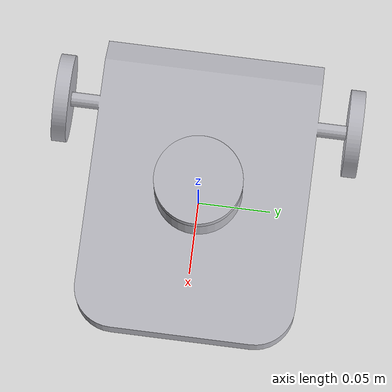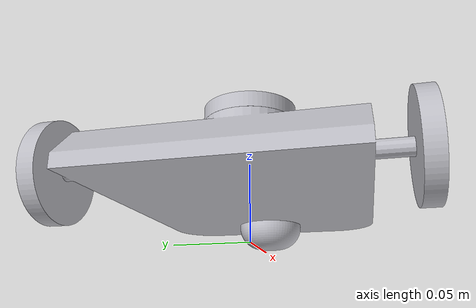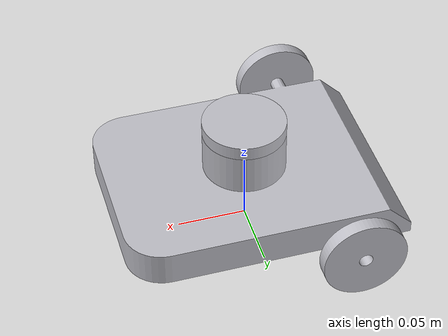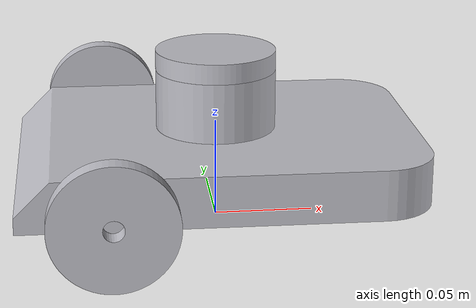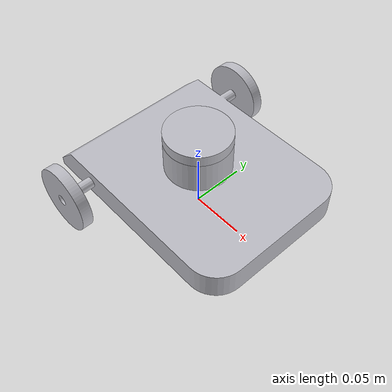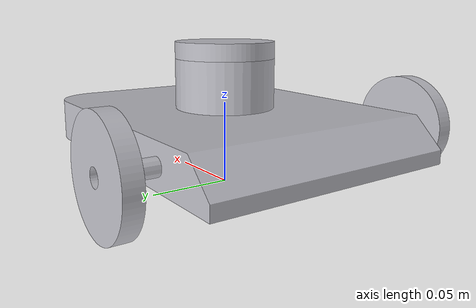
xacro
<?xml version="1.0" ?>
<robot name="rmp01_bot" xmlns:xacro="http://www.ros.org/wiki/xacro">

<xacro:include filename="$(find rmp01_bot_description)/urdf/materials.xacro" />
<xacro:include filename="$(find rmp01_bot_description)/urdf/rmp01_bot.trans" />
<xacro:include filename="$(find rmp01_bot_description)/urdf/rmp01_bot.gazebo" />
<link name="base_link">
  <inertial>
    <origin xyz="0.0014061657490346212 0.0 0.03770205101716623" rpy="0 0 0"/>
    <mass value="0.8569753987977322"/>
    <inertia ixx="0.00156" iyy="0.002508" izz="0.003853" ixy="0.0" iyz="0.0" ixz="-1.1e-05"/>
  </inertial>
  <visual>
    <origin xyz="0 0 0" rpy="0 0 0"/>
    <geometry>
      <mesh filename="package://rmp01_bot_description/meshes/base_link.stl" scale="0.001 0.001 0.001"/>
    </geometry>
    <material name="silver"/>
  </visual>
  <collision>
    <origin xyz="0 0 0" rpy="0 0 0"/>
    <geometry>
      <mesh filename="package://rmp01_bot_description/meshes/base_link.stl" scale="0.001 0.001 0.001"/>
    </geometry>
  </collision>
</link>
<!--camera link-->

<link name="camera_link"/>

<link name="right_wheel_1">
  <inertial>
    <origin xyz="-1.4932499681208355e-14 -0.0050000000000000044 0.0" rpy="0 0 0"/>
    <mass value="0.0255647102185869"/>
    <inertia ixx="6e-06" iyy="1.2e-05" izz="6e-06" ixy="0.0" iyz="-0.0" ixz="0.0"/>
  </inertial>
  <visual>
    <origin xyz="0.055 0.095 -0.035" rpy="0 0 0"/>
    <geometry>
      <mesh filename="package://rmp01_bot_description/meshes/right_wheel_1.stl" scale="0.001 0.001 0.001"/>
    </geometry>
    <material name="silver"/>
  </visual>
  <collision>
    <origin xyz="0.055 0.095 -0.035" rpy="0 0 0"/>
    <geometry>
      <mesh filename="package://rmp01_bot_description/meshes/right_wheel_1.stl" scale="0.001 0.001 0.001"/>
    </geometry>
  </collision>
</link>

<link name="left_wheel_1">
  <inertial>
    <origin xyz="-1.4932499681208355e-14 0.0050000000000000044 0.0" rpy="0 0 0"/>
    <mass value="0.0255647102185869"/>
    <inertia ixx="6e-06" iyy="1.2e-05" izz="6e-06" ixy="0.0" iyz="0.0" ixz="0.0"/>
  </inertial>
  <visual>
    <origin xyz="0.055 -0.095 -0.035" rpy="0 0 0"/>
    <geometry>
      <mesh filename="package://rmp01_bot_description/meshes/left_wheel_1.stl" scale="0.001 0.001 0.001"/>
    </geometry>
    <material name="silver"/>
  </visual>
  <collision>
    <origin xyz="0.055 -0.095 -0.035" rpy="0 0 0"/>
    <geometry>
      <mesh filename="package://rmp01_bot_description/meshes/left_wheel_1.stl" scale="0.001 0.001 0.001"/>
    </geometry>
  </collision>
</link>

<link name="caster_1">
  <inertial>
    <origin xyz="-0.03245000000000038 -8.011095240340356e-19 -0.007248183328440988" rpy="0 0 0"/>
    <mass value="0.18317584410379573"/>
    <inertia ixx="2.3e-05" iyy="2.3e-05" izz="3.9e-05" ixy="0.0" iyz="-0.0" ixz="-0.0"/>
  </inertial>
  <visual>
    <origin xyz="-0.1 -0.0 -0.0225" rpy="0 0 0"/>
    <geometry>
      <mesh filename="package://rmp01_bot_description/meshes/caster_1.stl" scale="0.001 0.001 0.001"/>
    </geometry>
    <material name="silver"/>
  </visual>
  <collision>
    <origin xyz="-0.1 -0.0 -0.0225" rpy="0 0 0"/>
    <geometry>
      <mesh filename="package://rmp01_bot_description/meshes/caster_1.stl" scale="0.001 0.001 0.001"/>
    </geometry>
  </collision>
</link>

<link name="lidar_1">
  <inertial>
    <origin xyz="0.0 0.0 0.0050000000000000044" rpy="0 0 0"/>
    <mass value="0.22195352097611892"/>
    <inertia ixx="5.2e-05" iyy="5.2e-05" izz="0.0001" ixy="0.0" iyz="-0.0" ixz="-0.0"/>
  </inertial>
  <visual>
    <origin xyz="-0.0 -0.0 -0.0775" rpy="0 0 0"/>
    <geometry>
      <mesh filename="package://rmp01_bot_description/meshes/lidar_1.stl" scale="0.001 0.001 0.001"/>
    </geometry>
    <material name="silver"/>
  </visual>
  <collision>
    <origin xyz="-0.0 -0.0 -0.0775" rpy="0 0 0"/>
    <geometry>
      <mesh filename="package://rmp01_bot_description/meshes/lidar_1.stl" scale="0.001 0.001 0.001"/>
    </geometry>
  </collision>
</link>
<joint name="camera_joint" type="fixed">
  <origin xyz="0.0 0.0 0.1" rpy="0 0 0"/>
  <parent link="base_link"/>
  <child link="camera_link"/>
  </joint>
<joint name="right_wheel_joint" type="continuous">
  <origin xyz="-0.055 -0.095 0.035" rpy="0 0 0"/>
  <parent link="base_link"/>
  <child link="right_wheel_1"/>
  <axis xyz="0.0 1.0 0.0"/>
</joint>

<joint name="left_wheel_joint" type="continuous">
  <origin xyz="-0.055 0.095 0.035" rpy="0 0 0"/>
  <parent link="base_link"/>
  <child link="left_wheel_1"/>
  <axis xyz="0.0 1.0 0.0"/>
</joint>

<joint name="caster_joint" type="fixed">
  <origin xyz="0.1 0.0 0.0225" rpy="0 0 0"/>
  <parent link="base_link"/>
  <child link="caster_1"/>
</joint>

<joint name="lidar_joint" type="fixed">
  <origin xyz="0.0 0.0 0.0775" rpy="0 0 0"/>
  <parent link="base_link"/>
  <child link="lidar_1"/>
</joint>

</robot>

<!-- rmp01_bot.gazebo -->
<robot name="rmp01_bot" xmlns:xacro="http://www.ros.org/wiki/xacro" >

<xacro:property name="wheel_color" value="Gazebo/Black" />
<xacro:property name="body_color" value="Gazebo/Red" />
<gazebo>
  <plugin name="control" filename="libgazebo_ros_control.so"/>
</gazebo>
<gazebo reference="base_link">
  <material>${body_color}</material>
  <mu1>0.2</mu1>
  <mu2>0.2</mu2>
  <selfCollide>true</selfCollide>
  <gravity>true</gravity>
</gazebo>

<gazebo reference="right_wheel_1">
  <material>${wheel_color}</material>
  <mu1>100</mu1>
  <mu2>100</mu2>
  <selfCollide>true</selfCollide>
</gazebo>

<gazebo reference="left_wheel_1">
  <material>${wheel_color}</material>
  <mu1>100</mu1>
  <mu2>100</mu2>
  <selfCollide>true</selfCollide>
</gazebo>

<gazebo reference="caster_1">
  <material>${body_color}</material>
  <mu1>0.2</mu1>
  <mu2>0.2</mu2>
  <selfCollide>true</selfCollide>
</gazebo>

<gazebo reference="lidar_1">
  <material>${body_color}</material>
  <mu1>0.2</mu1>
  <mu2>0.2</mu2>
  <selfCollide>true</selfCollide>
</gazebo>

<!-- diff drive -->

<gazebo>
  <plugin name="differential_drive_controller" filename="libgazebo_ros_diff_drive.so">

    <!-- Plugin update rate in Hz -->
    <updateRate>10</updateRate>

    <!-- Name of left joint, defaults to `left_joint` -->
    <leftJoint>left_wheel_joint</leftJoint>

    <!-- Name of right joint, defaults to `right_joint` -->
    <rightJoint>right_wheel_joint</rightJoint>

    <!-- The distance from the center of one wheel to the other, in meters, defaults to 0.34 m -->
    <wheelSeparation>0.20</wheelSeparation>

    <!-- Diameter of the wheels, in meters, defaults to 0.15 m -->
    <wheelDiameter>0.59</wheelDiameter>

    <!-- Wheel acceleration, in rad/s^2, defaults to 0.0 rad/s^2 -->
    <wheelAcceleration>1.0</wheelAcceleration>

    <!-- Maximum torque which the wheels can produce, in Nm, defaults to 5 Nm -->
    <wheelTorque>20</wheelTorque>

    <!-- Topic to receive geometry_msgs/Twist message commands, defaults to `cmd_vel` -->
    <commandTopic>cmd_vel</commandTopic>

    <!-- Topic to publish nav_msgs/Odometry messages, defaults to `odom` -->
    <odometryTopic>odom</odometryTopic>

    <!-- Odometry frame, defaults to `odom` -->
    <odometryFrame>odom</odometryFrame>

    <!-- Robot frame to calculate odometry from, defaults to `base_footprint` -->
    <robotBaseFrame>base_link</robotBaseFrame>

    <!-- Odometry source, 0 for ENCODER, 1 for WORLD, defaults to WORLD -->
    <odometrySource>1</odometrySource>

    <!-- Set to true to publish transforms for the wheel links, defaults to false -->
    <publishWheelTF>true</publishWheelTF>

    <!-- Set to true to publish transforms for the odometry, defaults to true -->
    <publishOdom>true</publishOdom>

    <!-- Set to true to publish sensor_msgs/JointState on /joint_states for the wheel joints, defaults to false -->
    <publishWheelJointState>true</publishWheelJointState>

    <!-- Set to true to swap right and left wheels, defaults to true -->
    <legacyMode>false</legacyMode>
  </plugin>
</gazebo>
<!--Lidar Plugin-->
<gazebo reference="lidar_1">
    <sensor type="ray" name="head_hokuyo_sensor">
      <pose>0 0 0 0 0 0</pose>
      <visualize>false</visualize>
      <update_rate>40</update_rate>
      <ray>
        <scan>
          <horizontal>
            <samples>720</samples>
            <resolution>1</resolution>
            <min_angle>-3.14</min_angle>
            <max_angle>3.14</max_angle>
          </horizontal>
        </scan>
        <range>
          <min>0.10</min>
          <max>30.0</max>
          <resolution>0.01</resolution>
        </range>
        <noise>
          <type>gaussian</type>
          <mean>0.0</mean>
          <stddev>0.01</stddev>
        </noise>
      </ray>
      <plugin name="gazebo_ros_head_hokuyo_controller" filename="libgazebo_ros_laser.so">
        <topicName>/scan</topicName>
        <frameName>lidar_1</frameName>
      </plugin>
    </sensor>
  </gazebo>
  <!-- camera -->
  <gazebo reference="camera_link">
    <sensor type="camera" name="camera1">
      <update_rate>30.0</update_rate>
      <camera name="head">
        <horizontal_fov>1.3962634</horizontal_fov>
        <image>-
          <width>800</width>
          <height>800</height>
          <format>R8G8B8</format>
        </image>
        <clip>
          <near>0.02</near>
          <far>300</far>
        </clip>
        <noise>
          <type>gaussian</type>
          <!-- Noise is sampled independently per pixel on each frame.
               That pixel's noise value is added to each of its color
               channels, which at that point lie in the range [0,1]. -->
          <mean>0.0</mean>
          <stddev>0.007</stddev>
        </noise>
      </camera>
      <plugin name="camera_controller" filename="libgazebo_ros_camera.so">
        <alwaysOn>true</alwaysOn>
        <updateRate>0.0</updateRate>
        <cameraName>rrbot/camera1</cameraName>
        <imageTopicName>image_raw</imageTopicName>
        <cameraInfoTopicName>camera_info</cameraInfoTopicName>
        <frameName>camera_link</frameName>
        <hackBaseline>0.07</hackBaseline>
        <distortionK1>0.0</distortionK1>
        <distortionK2>0.0</distortionK2>
        <distortionK3>0.0</distortionK3>
        <distortionT1>0.0</distortionT1>
        <distortionT2>0.0</distortionT2>
      </plugin>
    </sensor>
  </gazebo>
</robot>
